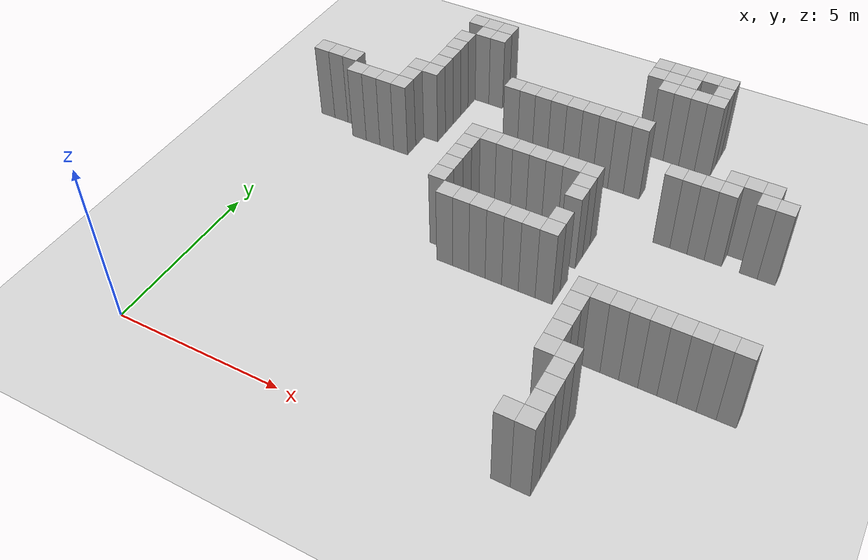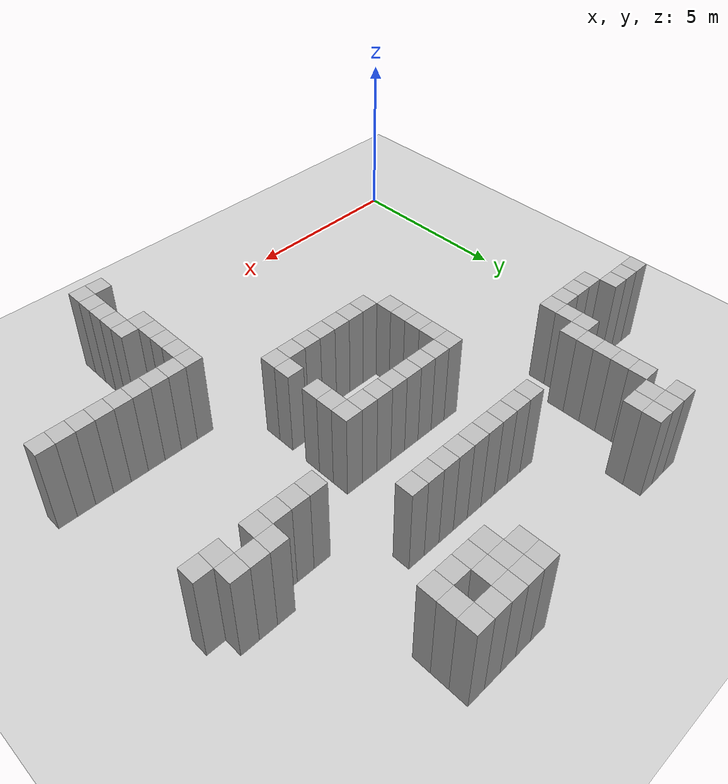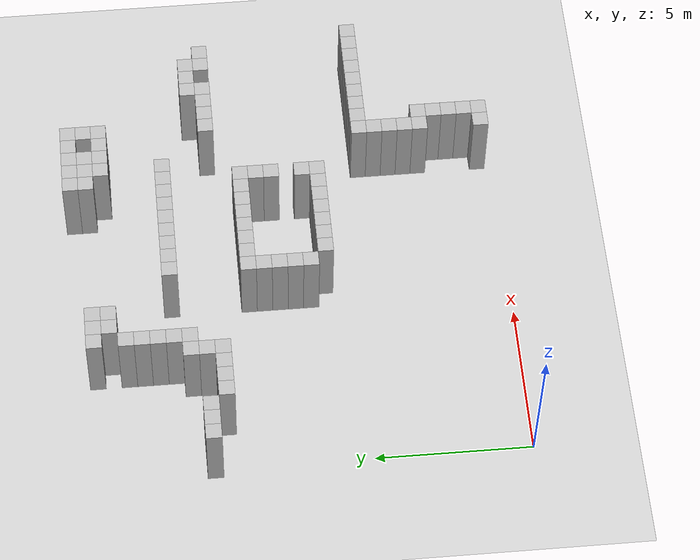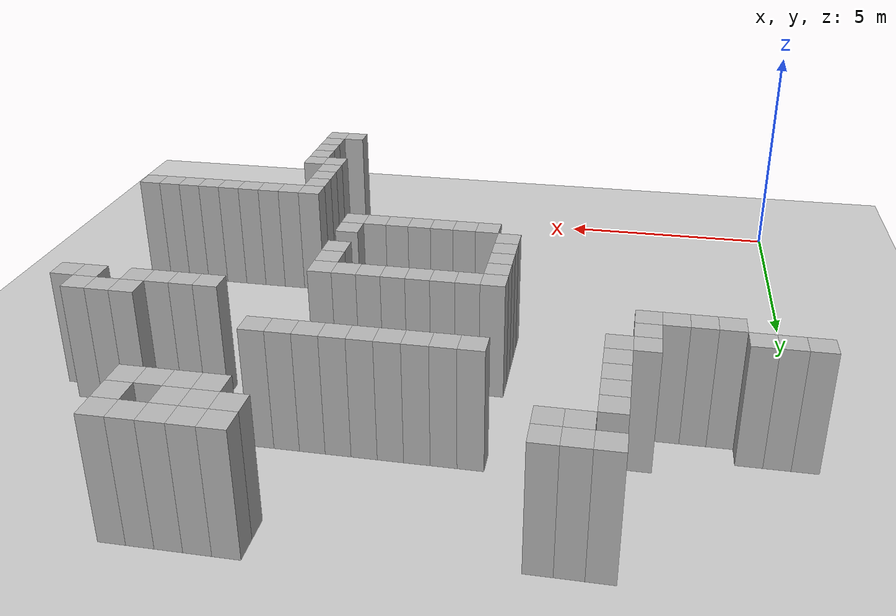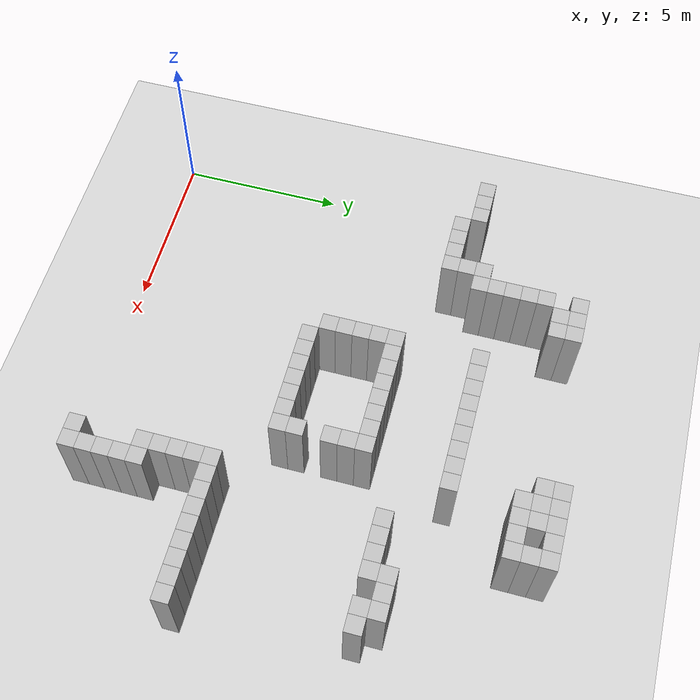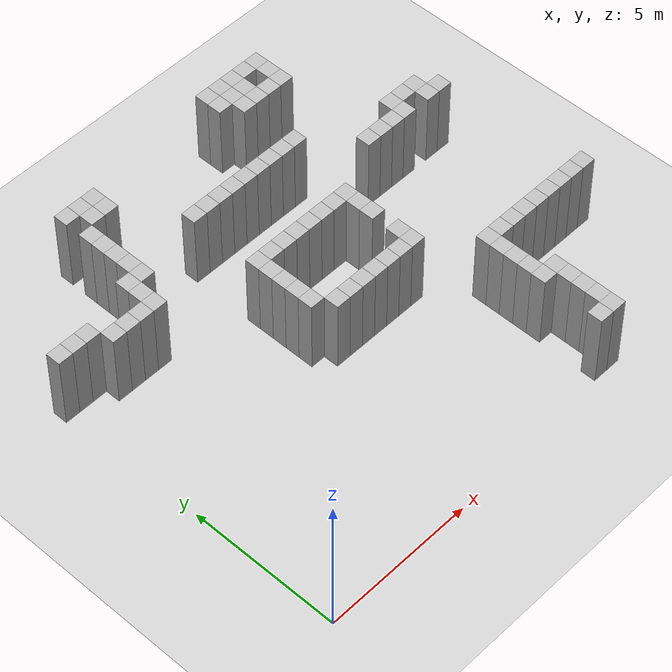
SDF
<sdf version="1.4">
 <world name="default">
  <model name="ground_plane">
   <static>1</static>
   <link name="link">
    <collision name="collision">
     <geometry><plane><normal>0 0 1</normal><size>100 100</size></plane></geometry>
     <surface>
      <contact><collide_bitmask>65535</collide_bitmask></contact>
      <friction><ode><mu>100</mu><mu2>50</mu2></ode></friction>
     </surface>
    </collision>
    <visual name="visual">
     <cast_shadows>0</cast_shadows>
     <geometry><plane><normal>0 0 1</normal><size>100 100</size></plane></geometry>
     <material>
      <script><uri>file://media/materials/scripts/gazebo.material</uri><name>Gazebo/Grey</name></script>
     </material>
    </visual>
   </link>
  </model>
  <light name="sun" type="directional">
   <pose>0 0 10 0 -0 0</pose>
   <diffuse>0.8 0.8 0.8 1</diffuse>
   <specular>0.2 0.2 0.2 1</specular>
   <attenuation>
    <range>1000</range>
    <constant>0.9</constant>
    <linear>0.01</linear>
    <quadratic>0.001</quadratic>
   </attenuation>
   <direction>-0.5 0.1 -0.9</direction>
  </light>
  <plugin name="model_push" filename="libpayload_joint_plugin.so"/>
  <plugin name="obstacle" filename="libobstacle_plugin.so"/>
  <plugin name="ros_interface_plugin" filename="librotors_gazebo_ros_interface_plugin.so"/>
  <spherical_coordinates>
   <surface_model>EARTH_WGS84</surface_model>
   <latitude_deg>47.3667</latitude_deg>
   <longitude_deg>8.55</longitude_deg>
   <elevation>500</elevation>
   <heading_deg>0</heading_deg>
  </spherical_coordinates>
  <physics name="default_physics" default="0" type="ode">
   <ode>
    <solver>
     <type>quick</type>
     <iters>100</iters>
     <sor>1.3</sor>
     <use_dynamic_moi_rescaling>0</use_dynamic_moi_rescaling>
    </solver>
    <constraints>
     <cfm>0</cfm>
     <erp>0.2</erp>
     <contact_max_correcting_vel>100</contact_max_correcting_vel>
     <contact_surface_layer>0.001</contact_surface_layer>
    </constraints>
   </ode>
   <max_step_size>0.004</max_step_size>
   <real_time_factor>1</real_time_factor>
   <real_time_update_rate>250</real_time_update_rate>
  </physics>
  <gravity>0 0 -9.8</gravity>
  <magnetic_field>6e-06 2.3e-05 -4.2e-05</magnetic_field>
  <atmosphere type="adiabatic"/>
  <scene><ambient>0.4 0.4 0.4 1</ambient><background>0.7 0.7 0.7 1</background><shadows>1</shadows></scene>
  <audio><device>default</device></audio>
  <model name="box_20">
   <static>1</static>
   <pose>0 10 1 0 -0 0</pose>
   <link name="link"><visual name="visual"><geometry><box><size>0.5 0.5 3</size></box></geometry></visual></link>
  </model>
  <model name="box_120">
   <static>1</static>
   <pose>0.5 10 1 0 -0 0</pose>
   <link name="link"><visual name="visual"><geometry><box><size>0.5 0.5 3</size></box></geometry></visual></link>
  </model>
  <model name="box_220">
   <static>1</static>
   <pose>1 10 1 0 -0 0</pose>
   <link name="link"><visual name="visual"><geometry><box><size>0.5 0.5 3</size></box></geometry></visual></link>
  </model>
  <model name="box_319">
   <static>1</static>
   <pose>1.5 9.5 1 0 -0 0</pose>
   <link name="link"><visual name="visual"><geometry><box><size>0.5 0.5 3</size></box></geometry></visual></link>
  </model>
  <model name="box_419">
   <static>1</static>
   <pose>2 9.5 1 0 -0 0</pose>
   <link name="link"><visual name="visual"><geometry><box><size>0.5 0.5 3</size></box></geometry></visual></link>
  </model>
  <model name="box_519">
   <static>1</static>
   <pose>2.5 9.5 1 0 -0 0</pose>
   <link name="link"><visual name="visual"><geometry><box><size>0.5 0.5 3</size></box></geometry></visual></link>
  </model>
  <model name="box_619">
   <static>1</static>
   <pose>3 9.5 1 0 -0 0</pose>
   <link name="link"><visual name="visual"><geometry><box><size>0.5 0.5 3</size></box></geometry></visual></link>
  </model>
  <model name="box_620">
   <static>1</static>
   <pose>3 10 1 0 -0 0</pose>
   <link name="link"><visual name="visual"><geometry><box><size>0.5 0.5 3</size></box></geometry></visual></link>
  </model>
  <model name="box_621">
   <static>1</static>
   <pose>3 10.5 1 0 -0 0</pose>
   <link name="link"><visual name="visual"><geometry><box><size>0.5 0.5 3</size></box></geometry></visual></link>
  </model>
  <model name="box_721">
   <static>1</static>
   <pose>3.5 10.5 1 0 -0 0</pose>
   <link name="link"><visual name="visual"><geometry><box><size>0.5 0.5 3</size></box></geometry></visual></link>
  </model>
  <model name="box_722">
   <static>1</static>
   <pose>3.5 11 1 0 -0 0</pose>
   <link name="link"><visual name="visual"><geometry><box><size>0.5 0.5 3</size></box></geometry></visual></link>
  </model>
  <model name="box_723">
   <static>1</static>
   <pose>3.5 11.5 1 0 -0 0</pose>
   <link name="link"><visual name="visual"><geometry><box><size>0.5 0.5 3</size></box></geometry></visual></link>
  </model>
  <model name="box_724">
   <static>1</static>
   <pose>3.5 12 1 0 -0 0</pose>
   <link name="link"><visual name="visual"><geometry><box><size>0.5 0.5 3</size></box></geometry></visual></link>
  </model>
  <model name="box_725">
   <static>1</static>
   <pose>3.5 12.5 1 0 -0 0</pose>
   <link name="link"><visual name="visual"><geometry><box><size>0.5 0.5 3</size></box></geometry></visual></link>
  </model>
  <model name="box_727">
   <static>1</static>
   <pose>3.5 13.5 1 0 -0 0</pose>
   <link name="link"><visual name="visual"><geometry><box><size>0.5 0.5 3</size></box></geometry></visual></link>
  </model>
  <model name="box_826">
   <static>1</static>
   <pose>4 13 1 0 -0 0</pose>
   <link name="link"><visual name="visual"><geometry><box><size>0.5 0.5 3</size></box></geometry></visual></link>
  </model>
  <model name="box_827">
   <static>1</static>
   <pose>4 13.5 1 0 -0 0</pose>
   <link name="link"><visual name="visual"><geometry><box><size>0.5 0.5 3</size></box></geometry></visual></link>
  </model>
  <model name="box_926">
   <static>1</static>
   <pose>4.5 13 1 0 -0 0</pose>
   <link name="link"><visual name="visual"><geometry><box><size>0.5 0.5 3</size></box></geometry></visual></link>
  </model>
  <model name="box_927">
   <static>1</static>
   <pose>4.5 13.5 1 0 -0 0</pose>
   <link name="link"><visual name="visual"><geometry><box><size>0.5 0.5 3</size></box></geometry></visual></link>
  </model>
  <model name="box_1213">
   <static>1</static>
   <pose>6 6.5 1 0 -0 0</pose>
   <link name="link"><visual name="visual"><geometry><box><size>0.5 0.5 3</size></box></geometry></visual></link>
  </model>
  <model name="box_1214">
   <static>1</static>
   <pose>6 7 1 0 -0 0</pose>
   <link name="link"><visual name="visual"><geometry><box><size>0.5 0.5 3</size></box></geometry></visual></link>
  </model>
  <model name="box_1215">
   <static>1</static>
   <pose>6 7.5 1 0 -0 0</pose>
   <link name="link"><visual name="visual"><geometry><box><size>0.5 0.5 3</size></box></geometry></visual></link>
  </model>
  <model name="box_1216">
   <static>1</static>
   <pose>6 8 1 0 -0 0</pose>
   <link name="link"><visual name="visual"><geometry><box><size>0.5 0.5 3</size></box></geometry></visual></link>
  </model>
  <model name="box_1217">
   <static>1</static>
   <pose>6 8.5 1 0 -0 0</pose>
   <link name="link"><visual name="visual"><geometry><box><size>0.5 0.5 3</size></box></geometry></visual></link>
  </model>
  <model name="box_1222">
   <static>1</static>
   <pose>6 11 1 0 -0 0</pose>
   <link name="link"><visual name="visual"><geometry><box><size>0.5 0.5 3</size></box></geometry></visual></link>
  </model>
  <model name="box_1312">
   <static>1</static>
   <pose>6.5 6 1 0 -0 0</pose>
   <link name="link"><visual name="visual"><geometry><box><size>0.5 0.5 3</size></box></geometry></visual></link>
  </model>
  <model name="box_1317">
   <static>1</static>
   <pose>6.5 8.5 1 0 -0 0</pose>
   <link name="link"><visual name="visual"><geometry><box><size>0.5 0.5 3</size></box></geometry></visual></link>
  </model>
  <model name="box_1322">
   <static>1</static>
   <pose>6.5 11 1 0 -0 0</pose>
   <link name="link"><visual name="visual"><geometry><box><size>0.5 0.5 3</size></box></geometry></visual></link>
  </model>
  <model name="box_1412">
   <static>1</static>
   <pose>7 6 1 0 -0 0</pose>
   <link name="link"><visual name="visual"><geometry><box><size>0.5 0.5 3</size></box></geometry></visual></link>
  </model>
  <model name="box_1417">
   <static>1</static>
   <pose>7 8.5 1 0 -0 0</pose>
   <link name="link"><visual name="visual"><geometry><box><size>0.5 0.5 3</size></box></geometry></visual></link>
  </model>
  <model name="box_1422">
   <static>1</static>
   <pose>7 11 1 0 -0 0</pose>
   <link name="link"><visual name="visual"><geometry><box><size>0.5 0.5 3</size></box></geometry></visual></link>
  </model>
  <model name="box_1512">
   <static>1</static>
   <pose>7.5 6 1 0 -0 0</pose>
   <link name="link"><visual name="visual"><geometry><box><size>0.5 0.5 3</size></box></geometry></visual></link>
  </model>
  <model name="box_1517">
   <static>1</static>
   <pose>7.5 8.5 1 0 -0 0</pose>
   <link name="link"><visual name="visual"><geometry><box><size>0.5 0.5 3</size></box></geometry></visual></link>
  </model>
  <model name="box_1522">
   <static>1</static>
   <pose>7.5 11 1 0 -0 0</pose>
   <link name="link"><visual name="visual"><geometry><box><size>0.5 0.5 3</size></box></geometry></visual></link>
  </model>
  <model name="box_1612">
   <static>1</static>
   <pose>8 6 1 0 -0 0</pose>
   <link name="link"><visual name="visual"><geometry><box><size>0.5 0.5 3</size></box></geometry></visual></link>
  </model>
  <model name="box_1617">
   <static>1</static>
   <pose>8 8.5 1 0 -0 0</pose>
   <link name="link"><visual name="visual"><geometry><box><size>0.5 0.5 3</size></box></geometry></visual></link>
  </model>
  <model name="box_1622">
   <static>1</static>
   <pose>8 11 1 0 -0 0</pose>
   <link name="link"><visual name="visual"><geometry><box><size>0.5 0.5 3</size></box></geometry></visual></link>
  </model>
  <model name="box_1712">
   <static>1</static>
   <pose>8.5 6 1 0 -0 0</pose>
   <link name="link"><visual name="visual"><geometry><box><size>0.5 0.5 3</size></box></geometry></visual></link>
  </model>
  <model name="box_1717">
   <static>1</static>
   <pose>8.5 8.5 1 0 -0 0</pose>
   <link name="link"><visual name="visual"><geometry><box><size>0.5 0.5 3</size></box></geometry></visual></link>
  </model>
  <model name="box_1722">
   <static>1</static>
   <pose>8.5 11 1 0 -0 0</pose>
   <link name="link"><visual name="visual"><geometry><box><size>0.5 0.5 3</size></box></geometry></visual></link>
  </model>
  <model name="box_1812">
   <static>1</static>
   <pose>9 6 1 0 -0 0</pose>
   <link name="link"><visual name="visual"><geometry><box><size>0.5 0.5 3</size></box></geometry></visual></link>
  </model>
  <model name="box_1817">
   <static>1</static>
   <pose>9 8.5 1 0 -0 0</pose>
   <link name="link"><visual name="visual"><geometry><box><size>0.5 0.5 3</size></box></geometry></visual></link>
  </model>
  <model name="box_1822">
   <static>1</static>
   <pose>9 11 1 0 -0 0</pose>
   <link name="link"><visual name="visual"><geometry><box><size>0.5 0.5 3</size></box></geometry></visual></link>
  </model>
  <model name="box_1912">
   <static>1</static>
   <pose>9.5 6 1 0 -0 0</pose>
   <link name="link"><visual name="visual"><geometry><box><size>0.5 0.5 3</size></box></geometry></visual></link>
  </model>
  <model name="box_1913">
   <static>1</static>
   <pose>9.5 6.5 1 0 -0 0</pose>
   <link name="link"><visual name="visual"><geometry><box><size>0.5 0.5 3</size></box></geometry></visual></link>
  </model>
  <model name="box_1915">
   <static>1</static>
   <pose>9.5 7.5 1 0 -0 0</pose>
   <link name="link"><visual name="visual"><geometry><box><size>0.5 0.5 3</size></box></geometry></visual></link>
  </model>
  <model name="box_1916">
   <static>1</static>
   <pose>9.5 8 1 0 -0 0</pose>
   <link name="link"><visual name="visual"><geometry><box><size>0.5 0.5 3</size></box></geometry></visual></link>
  </model>
  <model name="box_1917">
   <static>1</static>
   <pose>9.5 8.5 1 0 -0 0</pose>
   <link name="link"><visual name="visual"><geometry><box><size>0.5 0.5 3</size></box></geometry></visual></link>
  </model>
  <model name="box_1922">
   <static>1</static>
   <pose>9.5 11 1 0 -0 0</pose>
   <link name="link"><visual name="visual"><geometry><box><size>0.5 0.5 3</size></box></geometry></visual></link>
  </model>
  <model name="box_1927">
   <static>1</static>
   <pose>9.5 13.5 1 0 -0 0</pose>
   <link name="link"><visual name="visual"><geometry><box><size>0.5 0.5 3</size></box></geometry></visual></link>
  </model>
  <model name="box_1928">
   <static>1</static>
   <pose>9.5 14 1 0 -0 0</pose>
   <link name="link"><visual name="visual"><geometry><box><size>0.5 0.5 3</size></box></geometry></visual></link>
  </model>
  <model name="box_2022">
   <static>1</static>
   <pose>10 11 1 0 -0 0</pose>
   <link name="link"><visual name="visual"><geometry><box><size>0.5 0.5 3</size></box></geometry></visual></link>
  </model>
  <model name="box_2026">
   <static>1</static>
   <pose>10 13 1 0 -0 0</pose>
   <link name="link"><visual name="visual"><geometry><box><size>0.5 0.5 3</size></box></geometry></visual></link>
  </model>
  <model name="box_2027">
   <static>1</static>
   <pose>10 13.5 1 0 -0 0</pose>
   <link name="link"><visual name="visual"><geometry><box><size>0.5 0.5 3</size></box></geometry></visual></link>
  </model>
  <model name="box_2028">
   <static>1</static>
   <pose>10 14 1 0 -0 0</pose>
   <link name="link"><visual name="visual"><geometry><box><size>0.5 0.5 3</size></box></geometry></visual></link>
  </model>
  <model name="box_2126">
   <static>1</static>
   <pose>10.5 13 1 0 -0 0</pose>
   <link name="link"><visual name="visual"><geometry><box><size>0.5 0.5 3</size></box></geometry></visual></link>
  </model>
  <model name="box_2127">
   <static>1</static>
   <pose>10.5 13.5 1 0 -0 0</pose>
   <link name="link"><visual name="visual"><geometry><box><size>0.5 0.5 3</size></box></geometry></visual></link>
  </model>
  <model name="box_2128">
   <static>1</static>
   <pose>10.5 14 1 0 -0 0</pose>
   <link name="link"><visual name="visual"><geometry><box><size>0.5 0.5 3</size></box></geometry></visual></link>
  </model>
  <model name="box_2201">
   <static>1</static>
   <pose>11 0.5 1 0 -0 0</pose>
   <link name="link"><visual name="visual"><geometry><box><size>0.5 0.5 3</size></box></geometry></visual></link>
  </model>
  <model name="box_2205">
   <static>1</static>
   <pose>11 2.5 1 0 -0 0</pose>
   <link name="link"><visual name="visual"><geometry><box><size>0.5 0.5 3</size></box></geometry></visual></link>
  </model>
  <model name="box_2206">
   <static>1</static>
   <pose>11 3 1 0 -0 0</pose>
   <link name="link"><visual name="visual"><geometry><box><size>0.5 0.5 3</size></box></geometry></visual></link>
  </model>
  <model name="box_2207">
   <static>1</static>
   <pose>11 3.5 1 0 -0 0</pose>
   <link name="link"><visual name="visual"><geometry><box><size>0.5 0.5 3</size></box></geometry></visual></link>
  </model>
  <model name="box_2208">
   <static>1</static>
   <pose>11 4 1 0 -0 0</pose>
   <link name="link"><visual name="visual"><geometry><box><size>0.5 0.5 3</size></box></geometry></visual></link>
  </model>
  <model name="box_2209">
   <static>1</static>
   <pose>11 4.5 1 0 -0 0</pose>
   <link name="link"><visual name="visual"><geometry><box><size>0.5 0.5 3</size></box></geometry></visual></link>
  </model>
  <model name="box_2226">
   <static>1</static>
   <pose>11 13 1 0 -0 0</pose>
   <link name="link"><visual name="visual"><geometry><box><size>0.5 0.5 3</size></box></geometry></visual></link>
  </model>
  <model name="box_2228">
   <static>1</static>
   <pose>11 14 1 0 -0 0</pose>
   <link name="link"><visual name="visual"><geometry><box><size>0.5 0.5 3</size></box></geometry></visual></link>
  </model>
  <model name="box_2301">
   <static>1</static>
   <pose>11.5 0.5 1 0 -0 0</pose>
   <link name="link"><visual name="visual"><geometry><box><size>0.5 0.5 3</size></box></geometry></visual></link>
  </model>
  <model name="box_2302">
   <static>1</static>
   <pose>11.5 1 1 0 -0 0</pose>
   <link name="link"><visual name="visual"><geometry><box><size>0.5 0.5 3</size></box></geometry></visual></link>
  </model>
  <model name="box_2303">
   <static>1</static>
   <pose>11.5 1.5 1 0 -0 0</pose>
   <link name="link"><visual name="visual"><geometry><box><size>0.5 0.5 3</size></box></geometry></visual></link>
  </model>
  <model name="box_2304">
   <static>1</static>
   <pose>11.5 2 1 0 -0 0</pose>
   <link name="link"><visual name="visual"><geometry><box><size>0.5 0.5 3</size></box></geometry></visual></link>
  </model>
  <model name="box_2305">
   <static>1</static>
   <pose>11.5 2.5 1 0 -0 0</pose>
   <link name="link"><visual name="visual"><geometry><box><size>0.5 0.5 3</size></box></geometry></visual></link>
  </model>
  <model name="box_2309">
   <static>1</static>
   <pose>11.5 4.5 1 0 -0 0</pose>
   <link name="link"><visual name="visual"><geometry><box><size>0.5 0.5 3</size></box></geometry></visual></link>
  </model>
  <model name="box_2319">
   <static>1</static>
   <pose>11.5 9.5 1 0 -0 0</pose>
   <link name="link"><visual name="visual"><geometry><box><size>0.5 0.5 3</size></box></geometry></visual></link>
  </model>
  <model name="box_2326">
   <static>1</static>
   <pose>11.5 13 1 0 -0 0</pose>
   <link name="link"><visual name="visual"><geometry><box><size>0.5 0.5 3</size></box></geometry></visual></link>
  </model>
  <model name="box_2327">
   <static>1</static>
   <pose>11.5 13.5 1 0 -0 0</pose>
   <link name="link"><visual name="visual"><geometry><box><size>0.5 0.5 3</size></box></geometry></visual></link>
  </model>
  <model name="box_2328">
   <static>1</static>
   <pose>11.5 14 1 0 -0 0</pose>
   <link name="link"><visual name="visual"><geometry><box><size>0.5 0.5 3</size></box></geometry></visual></link>
  </model>
  <model name="box_2409">
   <static>1</static>
   <pose>12 4.5 1 0 -0 0</pose>
   <link name="link"><visual name="visual"><geometry><box><size>0.5 0.5 3</size></box></geometry></visual></link>
  </model>
  <model name="box_2419">
   <static>1</static>
   <pose>12 9.5 1 0 -0 0</pose>
   <link name="link"><visual name="visual"><geometry><box><size>0.5 0.5 3</size></box></geometry></visual></link>
  </model>
  <model name="box_2509">
   <static>1</static>
   <pose>12.5 4.5 1 0 -0 0</pose>
   <link name="link"><visual name="visual"><geometry><box><size>0.5 0.5 3</size></box></geometry></visual></link>
  </model>
  <model name="box_2519">
   <static>1</static>
   <pose>12.5 9.5 1 0 -0 0</pose>
   <link name="link"><visual name="visual"><geometry><box><size>0.5 0.5 3</size></box></geometry></visual></link>
  </model>
  <model name="box_2609">
   <static>1</static>
   <pose>13 4.5 1 0 -0 0</pose>
   <link name="link"><visual name="visual"><geometry><box><size>0.5 0.5 3</size></box></geometry></visual></link>
  </model>
  <model name="box_2619">
   <static>1</static>
   <pose>13 9.5 1 0 -0 0</pose>
   <link name="link"><visual name="visual"><geometry><box><size>0.5 0.5 3</size></box></geometry></visual></link>
  </model>
  <model name="box_2620">
   <static>1</static>
   <pose>13 10 1 0 -0 0</pose>
   <link name="link"><visual name="visual"><geometry><box><size>0.5 0.5 3</size></box></geometry></visual></link>
  </model>
  <model name="box_2709">
   <static>1</static>
   <pose>13.5 4.5 1 0 -0 0</pose>
   <link name="link"><visual name="visual"><geometry><box><size>0.5 0.5 3</size></box></geometry></visual></link>
  </model>
  <model name="box_2720">
   <static>1</static>
   <pose>13.5 10 1 0 -0 0</pose>
   <link name="link"><visual name="visual"><geometry><box><size>0.5 0.5 3</size></box></geometry></visual></link>
  </model>
  <model name="box_2809">
   <static>1</static>
   <pose>14 4.5 1 0 -0 0</pose>
   <link name="link"><visual name="visual"><geometry><box><size>0.5 0.5 3</size></box></geometry></visual></link>
  </model>
  <model name="box_2819">
   <static>1</static>
   <pose>14 9.5 1 0 -0 0</pose>
   <link name="link"><visual name="visual"><geometry><box><size>0.5 0.5 3</size></box></geometry></visual></link>
  </model>
  <model name="box_2820">
   <static>1</static>
   <pose>14 10 1 0 -0 0</pose>
   <link name="link"><visual name="visual"><geometry><box><size>0.5 0.5 3</size></box></geometry></visual></link>
  </model>
  <model name="box_2909">
   <static>1</static>
   <pose>14.5 4.5 1 0 -0 0</pose>
   <link name="link"><visual name="visual"><geometry><box><size>0.5 0.5 3</size></box></geometry></visual></link>
  </model>
  <model name="box_2919">
   <static>1</static>
   <pose>14.5 9.5 1 0 -0 0</pose>
   <link name="link"><visual name="visual"><geometry><box><size>0.5 0.5 3</size></box></geometry></visual></link>
  </model>
  <model name="box_3009">
   <static>1</static>
   <pose>15 4.5 1 0 -0 0</pose>
   <link name="link"><visual name="visual"><geometry><box><size>0.5 0.5 3</size></box></geometry></visual></link>
  </model>
 </world>
</sdf>
